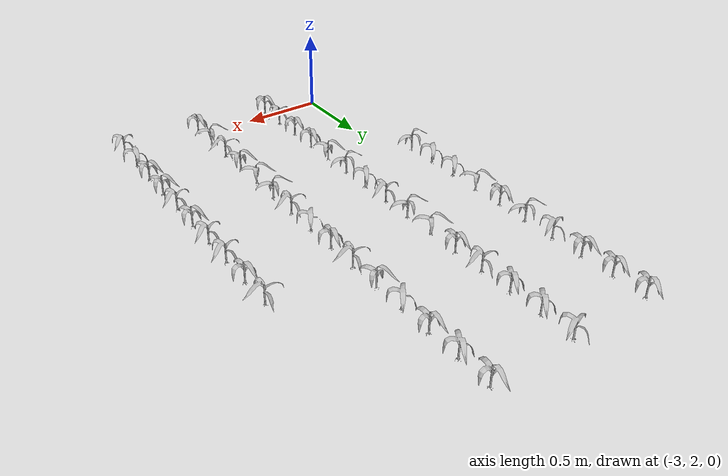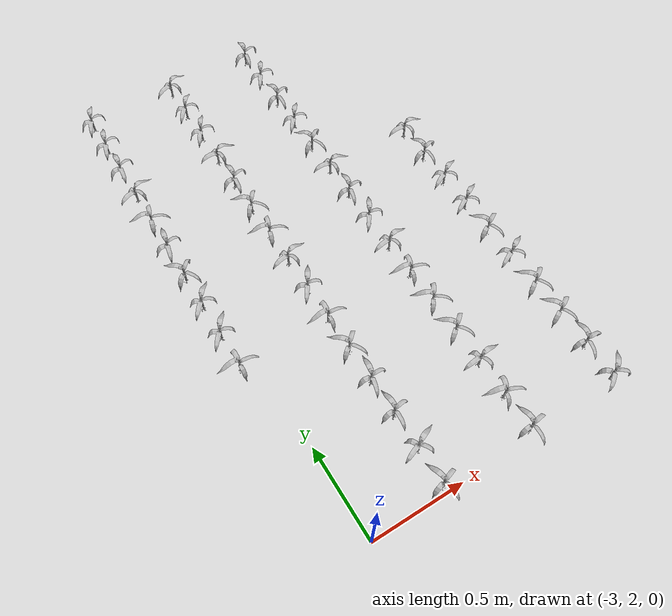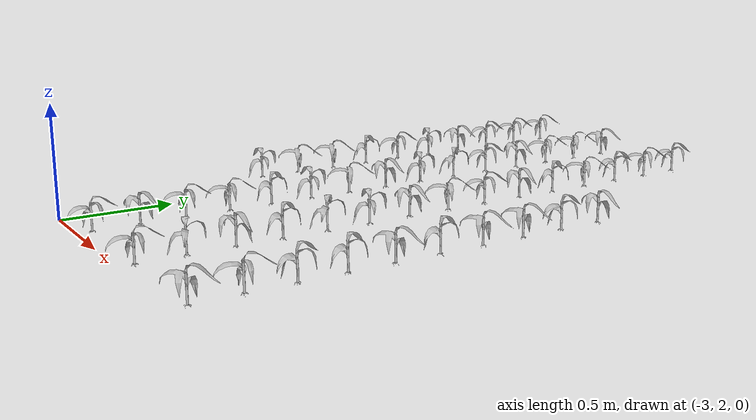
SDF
<sdf version="1.7">
 <world name="default">
  <model name="maize_-3.1033724693828124_3.000000000000001">
   <static>1</static>
   <link name="link">
    <inertial>
     <mass>0.2</mass>
     <inertia>
      <ixx>0.166667</ixx>
      <ixy>0</ixy>
      <ixz>0</ixz>
      <iyy>0.166667</iyy>
      <iyz>0</iyz>
      <izz>0.166667</izz>
     </inertia>
    </inertial>
    <collision name="collision">
     <geometry><mesh><uri>model://corn_3/meshes/corn.dae</uri><scale>0.25 0.25 0.25</scale></mesh></geometry>
     <surface>
      <friction><ode><mu>0</mu><mu2>0</mu2></ode></friction>
      <contact><ode><kp>0</kp><kd>0</kd><max_vel>0</max_vel><min_depth>0.002</min_depth></ode></contact>
     </surface>
    </collision>
    <visual name="visual">
     <geometry><mesh><uri>model://corn_3/meshes/corn.dae</uri><scale>0.25 0.25 0.25</scale></mesh></geometry>
    </visual>
    <velocity_decay><linear>0</linear><angular>0</angular></velocity_decay>
   </link>
   <pose>-3.10337 3 0.05 0 -0 3.10101</pose>
  </model>
  <model name="maize_-3.1033724693828124_3.1950000000000003">
   <static>1</static>
   <link name="link">
    <inertial>
     <mass>0.2</mass>
     <inertia>
      <ixx>0.166667</ixx>
      <ixy>0</ixy>
      <ixz>0</ixz>
      <iyy>0.166667</iyy>
      <iyz>0</iyz>
      <izz>0.166667</izz>
     </inertia>
    </inertial>
    <collision name="collision">
     <geometry><mesh><uri>model://corn_3/meshes/corn.dae</uri><scale>0.25 0.25 0.25</scale></mesh></geometry>
     <surface>
      <friction><ode><mu>0</mu><mu2>0</mu2></ode></friction>
      <contact><ode><kp>0</kp><kd>0</kd><max_vel>0</max_vel><min_depth>0.002</min_depth></ode></contact>
     </surface>
    </collision>
    <visual name="visual">
     <geometry><mesh><uri>model://corn_3/meshes/corn.dae</uri><scale>0.25 0.25 0.25</scale></mesh></geometry>
    </visual>
    <velocity_decay><linear>0</linear><angular>0</angular></velocity_decay>
   </link>
   <pose>-3.10337 3.195 0.05 0 -0 0.96652</pose>
  </model>
  <model name="maize_-3.1033724693828124_3.3899999999999997">
   <static>1</static>
   <link name="link">
    <inertial>
     <mass>0.2</mass>
     <inertia>
      <ixx>0.166667</ixx>
      <ixy>0</ixy>
      <ixz>0</ixz>
      <iyy>0.166667</iyy>
      <iyz>0</iyz>
      <izz>0.166667</izz>
     </inertia>
    </inertial>
    <collision name="collision">
     <geometry><mesh><uri>model://corn_3/meshes/corn.dae</uri><scale>0.25 0.25 0.25</scale></mesh></geometry>
     <surface>
      <friction><ode><mu>0</mu><mu2>0</mu2></ode></friction>
      <contact><ode><kp>0</kp><kd>0</kd><max_vel>0</max_vel><min_depth>0.002</min_depth></ode></contact>
     </surface>
    </collision>
    <visual name="visual">
     <geometry><mesh><uri>model://corn_3/meshes/corn.dae</uri><scale>0.25 0.25 0.25</scale></mesh></geometry>
    </visual>
    <velocity_decay><linear>0</linear><angular>0</angular></velocity_decay>
   </link>
   <pose>-3.10337 3.39 0.05 0 -0 0.922657</pose>
  </model>
  <model name="maize_-3.1033724693828124_3.585">
   <static>1</static>
   <link name="link">
    <inertial>
     <mass>0.2</mass>
     <inertia>
      <ixx>0.166667</ixx>
      <ixy>0</ixy>
      <ixz>0</ixz>
      <iyy>0.166667</iyy>
      <iyz>0</iyz>
      <izz>0.166667</izz>
     </inertia>
    </inertial>
    <collision name="collision">
     <geometry><mesh><uri>model://corn_3/meshes/corn.dae</uri><scale>0.25 0.25 0.25</scale></mesh></geometry>
     <surface>
      <friction><ode><mu>0</mu><mu2>0</mu2></ode></friction>
      <contact><ode><kp>0</kp><kd>0</kd><max_vel>0</max_vel><min_depth>0.002</min_depth></ode></contact>
     </surface>
    </collision>
    <visual name="visual">
     <geometry><mesh><uri>model://corn_3/meshes/corn.dae</uri><scale>0.25 0.25 0.25</scale></mesh></geometry>
    </visual>
    <velocity_decay><linear>0</linear><angular>0</angular></velocity_decay>
   </link>
   <pose>-3.10337 3.585 0.05 0 -0 2.23594</pose>
  </model>
  <model name="maize_-3.1033724693828124_3.7800000000000002">
   <static>1</static>
   <link name="link">
    <inertial>
     <mass>0.2</mass>
     <inertia>
      <ixx>0.166667</ixx>
      <ixy>0</ixy>
      <ixz>0</ixz>
      <iyy>0.166667</iyy>
      <iyz>0</iyz>
      <izz>0.166667</izz>
     </inertia>
    </inertial>
    <collision name="collision">
     <geometry><mesh><uri>model://corn_3/meshes/corn.dae</uri><scale>0.25 0.25 0.25</scale></mesh></geometry>
     <surface>
      <friction><ode><mu>0</mu><mu2>0</mu2></ode></friction>
      <contact><ode><kp>0</kp><kd>0</kd><max_vel>0</max_vel><min_depth>0.002</min_depth></ode></contact>
     </surface>
    </collision>
    <visual name="visual">
     <geometry><mesh><uri>model://corn_3/meshes/corn.dae</uri><scale>0.25 0.25 0.25</scale></mesh></geometry>
    </visual>
    <velocity_decay><linear>0</linear><angular>0</angular></velocity_decay>
   </link>
   <pose>-3.10337 3.78 0.05 0 -0 1.43829</pose>
  </model>
  <model name="maize_-3.1033724693828124_3.9750000000000005">
   <static>1</static>
   <link name="link">
    <inertial>
     <mass>0.2</mass>
     <inertia>
      <ixx>0.166667</ixx>
      <ixy>0</ixy>
      <ixz>0</ixz>
      <iyy>0.166667</iyy>
      <iyz>0</iyz>
      <izz>0.166667</izz>
     </inertia>
    </inertial>
    <collision name="collision">
     <geometry><mesh><uri>model://corn_3/meshes/corn.dae</uri><scale>0.25 0.25 0.25</scale></mesh></geometry>
     <surface>
      <friction><ode><mu>0</mu><mu2>0</mu2></ode></friction>
      <contact><ode><kp>0</kp><kd>0</kd><max_vel>0</max_vel><min_depth>0.002</min_depth></ode></contact>
     </surface>
    </collision>
    <visual name="visual">
     <geometry><mesh><uri>model://corn_3/meshes/corn.dae</uri><scale>0.25 0.25 0.25</scale></mesh></geometry>
    </visual>
    <velocity_decay><linear>0</linear><angular>0</angular></velocity_decay>
   </link>
   <pose>-3.10337 3.975 0.05 0 -0 2.82907</pose>
  </model>
  <model name="maize_-3.1033724693828124_4.170000000000001">
   <static>1</static>
   <link name="link">
    <inertial>
     <mass>0.2</mass>
     <inertia>
      <ixx>0.166667</ixx>
      <ixy>0</ixy>
      <ixz>0</ixz>
      <iyy>0.166667</iyy>
      <iyz>0</iyz>
      <izz>0.166667</izz>
     </inertia>
    </inertial>
    <collision name="collision">
     <geometry><mesh><uri>model://corn_3/meshes/corn.dae</uri><scale>0.25 0.25 0.25</scale></mesh></geometry>
     <surface>
      <friction><ode><mu>0</mu><mu2>0</mu2></ode></friction>
      <contact><ode><kp>0</kp><kd>0</kd><max_vel>0</max_vel><min_depth>0.002</min_depth></ode></contact>
     </surface>
    </collision>
    <visual name="visual">
     <geometry><mesh><uri>model://corn_3/meshes/corn.dae</uri><scale>0.25 0.25 0.25</scale></mesh></geometry>
    </visual>
    <velocity_decay><linear>0</linear><angular>0</angular></velocity_decay>
   </link>
   <pose>-3.10337 4.17 0.05 0 -0 0.369737</pose>
  </model>
  <model name="maize_-3.1033724693828124_4.365000000000001">
   <static>1</static>
   <link name="link">
    <inertial>
     <mass>0.2</mass>
     <inertia>
      <ixx>0.166667</ixx>
      <ixy>0</ixy>
      <ixz>0</ixz>
      <iyy>0.166667</iyy>
      <iyz>0</iyz>
      <izz>0.166667</izz>
     </inertia>
    </inertial>
    <collision name="collision">
     <geometry><mesh><uri>model://corn_3/meshes/corn.dae</uri><scale>0.25 0.25 0.25</scale></mesh></geometry>
     <surface>
      <friction><ode><mu>0</mu><mu2>0</mu2></ode></friction>
      <contact><ode><kp>0</kp><kd>0</kd><max_vel>0</max_vel><min_depth>0.002</min_depth></ode></contact>
     </surface>
    </collision>
    <visual name="visual">
     <geometry><mesh><uri>model://corn_3/meshes/corn.dae</uri><scale>0.25 0.25 0.25</scale></mesh></geometry>
    </visual>
    <velocity_decay><linear>0</linear><angular>0</angular></velocity_decay>
   </link>
   <pose>-3.10337 4.365 0.05 0 -0 1.53929</pose>
  </model>
  <model name="maize_-3.1033724693828124_4.56">
   <static>1</static>
   <link name="link">
    <inertial>
     <mass>0.2</mass>
     <inertia>
      <ixx>0.166667</ixx>
      <ixy>0</ixy>
      <ixz>0</ixz>
      <iyy>0.166667</iyy>
      <iyz>0</iyz>
      <izz>0.166667</izz>
     </inertia>
    </inertial>
    <collision name="collision">
     <geometry><mesh><uri>model://corn_3/meshes/corn.dae</uri><scale>0.25 0.25 0.25</scale></mesh></geometry>
     <surface>
      <friction><ode><mu>0</mu><mu2>0</mu2></ode></friction>
      <contact><ode><kp>0</kp><kd>0</kd><max_vel>0</max_vel><min_depth>0.002</min_depth></ode></contact>
     </surface>
    </collision>
    <visual name="visual">
     <geometry><mesh><uri>model://corn_3/meshes/corn.dae</uri><scale>0.25 0.25 0.25</scale></mesh></geometry>
    </visual>
    <velocity_decay><linear>0</linear><angular>0</angular></velocity_decay>
   </link>
   <pose>-3.10337 4.56 0.05 0 -0 1.33146</pose>
  </model>
  <model name="maize_-3.1033724693828124_4.755">
   <static>1</static>
   <link name="link">
    <inertial>
     <mass>0.2</mass>
     <inertia>
      <ixx>0.166667</ixx>
      <ixy>0</ixy>
      <ixz>0</ixz>
      <iyy>0.166667</iyy>
      <iyz>0</iyz>
      <izz>0.166667</izz>
     </inertia>
    </inertial>
    <collision name="collision">
     <geometry><mesh><uri>model://corn_3/meshes/corn.dae</uri><scale>0.25 0.25 0.25</scale></mesh></geometry>
     <surface>
      <friction><ode><mu>0</mu><mu2>0</mu2></ode></friction>
      <contact><ode><kp>0</kp><kd>0</kd><max_vel>0</max_vel><min_depth>0.002</min_depth></ode></contact>
     </surface>
    </collision>
    <visual name="visual">
     <geometry><mesh><uri>model://corn_3/meshes/corn.dae</uri><scale>0.25 0.25 0.25</scale></mesh></geometry>
    </visual>
    <velocity_decay><linear>0</linear><angular>0</angular></velocity_decay>
   </link>
   <pose>-3.10337 4.755 0.05 0 -0 1.23403</pose>
  </model>
  <model name="maize_-2.605993253374367_2.0250000000000004">
   <static>1</static>
   <link name="link">
    <inertial>
     <mass>0.2</mass>
     <inertia>
      <ixx>0.166667</ixx>
      <ixy>0</ixy>
      <ixz>0</ixz>
      <iyy>0.166667</iyy>
      <iyz>0</iyz>
      <izz>0.166667</izz>
     </inertia>
    </inertial>
    <collision name="collision">
     <geometry><mesh><uri>model://corn_3/meshes/corn.dae</uri><scale>0.25 0.25 0.25</scale></mesh></geometry>
     <surface>
      <friction><ode><mu>0</mu><mu2>0</mu2></ode></friction>
      <contact><ode><kp>0</kp><kd>0</kd><max_vel>0</max_vel><min_depth>0.002</min_depth></ode></contact>
     </surface>
    </collision>
    <visual name="visual">
     <geometry><mesh><uri>model://corn_3/meshes/corn.dae</uri><scale>0.25 0.25 0.25</scale></mesh></geometry>
    </visual>
    <velocity_decay><linear>0</linear><angular>0</angular></velocity_decay>
   </link>
   <pose>-2.60599 2.025 0.05 0 -0 1.80878</pose>
  </model>
  <model name="maize_-2.605993253374367_2.2200000000000006">
   <static>1</static>
   <link name="link">
    <inertial>
     <mass>0.2</mass>
     <inertia>
      <ixx>0.166667</ixx>
      <ixy>0</ixy>
      <ixz>0</ixz>
      <iyy>0.166667</iyy>
      <iyz>0</iyz>
      <izz>0.166667</izz>
     </inertia>
    </inertial>
    <collision name="collision">
     <geometry><mesh><uri>model://corn_3/meshes/corn.dae</uri><scale>0.25 0.25 0.25</scale></mesh></geometry>
     <surface>
      <friction><ode><mu>0</mu><mu2>0</mu2></ode></friction>
      <contact><ode><kp>0</kp><kd>0</kd><max_vel>0</max_vel><min_depth>0.002</min_depth></ode></contact>
     </surface>
    </collision>
    <visual name="visual">
     <geometry><mesh><uri>model://corn_3/meshes/corn.dae</uri><scale>0.25 0.25 0.25</scale></mesh></geometry>
    </visual>
    <velocity_decay><linear>0</linear><angular>0</angular></velocity_decay>
   </link>
   <pose>-2.60599 2.22 0.05 0 -0 0.457875</pose>
  </model>
  <model name="maize_-2.605993253374367_2.415">
   <static>1</static>
   <link name="link">
    <inertial>
     <mass>0.2</mass>
     <inertia>
      <ixx>0.166667</ixx>
      <ixy>0</ixy>
      <ixz>0</ixz>
      <iyy>0.166667</iyy>
      <iyz>0</iyz>
      <izz>0.166667</izz>
     </inertia>
    </inertial>
    <collision name="collision">
     <geometry><mesh><uri>model://corn_3/meshes/corn.dae</uri><scale>0.25 0.25 0.25</scale></mesh></geometry>
     <surface>
      <friction><ode><mu>0</mu><mu2>0</mu2></ode></friction>
      <contact><ode><kp>0</kp><kd>0</kd><max_vel>0</max_vel><min_depth>0.002</min_depth></ode></contact>
     </surface>
    </collision>
    <visual name="visual">
     <geometry><mesh><uri>model://corn_3/meshes/corn.dae</uri><scale>0.25 0.25 0.25</scale></mesh></geometry>
    </visual>
    <velocity_decay><linear>0</linear><angular>0</angular></velocity_decay>
   </link>
   <pose>-2.60599 2.415 0.05 0 -0 1.5924</pose>
  </model>
  <model name="maize_-2.605993253374367_2.6100000000000003">
   <static>1</static>
   <link name="link">
    <inertial>
     <mass>0.2</mass>
     <inertia>
      <ixx>0.166667</ixx>
      <ixy>0</ixy>
      <ixz>0</ixz>
      <iyy>0.166667</iyy>
      <iyz>0</iyz>
      <izz>0.166667</izz>
     </inertia>
    </inertial>
    <collision name="collision">
     <geometry><mesh><uri>model://corn_3/meshes/corn.dae</uri><scale>0.25 0.25 0.25</scale></mesh></geometry>
     <surface>
      <friction><ode><mu>0</mu><mu2>0</mu2></ode></friction>
      <contact><ode><kp>0</kp><kd>0</kd><max_vel>0</max_vel><min_depth>0.002</min_depth></ode></contact>
     </surface>
    </collision>
    <visual name="visual">
     <geometry><mesh><uri>model://corn_3/meshes/corn.dae</uri><scale>0.25 0.25 0.25</scale></mesh></geometry>
    </visual>
    <velocity_decay><linear>0</linear><angular>0</angular></velocity_decay>
   </link>
   <pose>-2.60599 2.61 0.05 0 -0 1.40563</pose>
  </model>
  <model name="maize_-2.605993253374367_2.8050000000000006">
   <static>1</static>
   <link name="link">
    <inertial>
     <mass>0.2</mass>
     <inertia>
      <ixx>0.166667</ixx>
      <ixy>0</ixy>
      <ixz>0</ixz>
      <iyy>0.166667</iyy>
      <iyz>0</iyz>
      <izz>0.166667</izz>
     </inertia>
    </inertial>
    <collision name="collision">
     <geometry><mesh><uri>model://corn_3/meshes/corn.dae</uri><scale>0.25 0.25 0.25</scale></mesh></geometry>
     <surface>
      <friction><ode><mu>0</mu><mu2>0</mu2></ode></friction>
      <contact><ode><kp>0</kp><kd>0</kd><max_vel>0</max_vel><min_depth>0.002</min_depth></ode></contact>
     </surface>
    </collision>
    <visual name="visual">
     <geometry><mesh><uri>model://corn_3/meshes/corn.dae</uri><scale>0.25 0.25 0.25</scale></mesh></geometry>
    </visual>
    <velocity_decay><linear>0</linear><angular>0</angular></velocity_decay>
   </link>
   <pose>-2.60599 2.805 0.05 0 -0 2.2335</pose>
  </model>
  <model name="maize_-2.605993253374367_3.000000000000001">
   <static>1</static>
   <link name="link">
    <inertial>
     <mass>0.2</mass>
     <inertia>
      <ixx>0.166667</ixx>
      <ixy>0</ixy>
      <ixz>0</ixz>
      <iyy>0.166667</iyy>
      <iyz>0</iyz>
      <izz>0.166667</izz>
     </inertia>
    </inertial>
    <collision name="collision">
     <geometry><mesh><uri>model://corn_3/meshes/corn.dae</uri><scale>0.25 0.25 0.25</scale></mesh></geometry>
     <surface>
      <friction><ode><mu>0</mu><mu2>0</mu2></ode></friction>
      <contact><ode><kp>0</kp><kd>0</kd><max_vel>0</max_vel><min_depth>0.002</min_depth></ode></contact>
     </surface>
    </collision>
    <visual name="visual">
     <geometry><mesh><uri>model://corn_3/meshes/corn.dae</uri><scale>0.25 0.25 0.25</scale></mesh></geometry>
    </visual>
    <velocity_decay><linear>0</linear><angular>0</angular></velocity_decay>
   </link>
   <pose>-2.60599 3 0.05 0 -0 3.0955</pose>
  </model>
  <model name="maize_-2.605993253374367_3.1950000000000003">
   <static>1</static>
   <link name="link">
    <inertial>
     <mass>0.2</mass>
     <inertia>
      <ixx>0.166667</ixx>
      <ixy>0</ixy>
      <ixz>0</ixz>
      <iyy>0.166667</iyy>
      <iyz>0</iyz>
      <izz>0.166667</izz>
     </inertia>
    </inertial>
    <collision name="collision">
     <geometry><mesh><uri>model://corn_3/meshes/corn.dae</uri><scale>0.25 0.25 0.25</scale></mesh></geometry>
     <surface>
      <friction><ode><mu>0</mu><mu2>0</mu2></ode></friction>
      <contact><ode><kp>0</kp><kd>0</kd><max_vel>0</max_vel><min_depth>0.002</min_depth></ode></contact>
     </surface>
    </collision>
    <visual name="visual">
     <geometry><mesh><uri>model://corn_3/meshes/corn.dae</uri><scale>0.25 0.25 0.25</scale></mesh></geometry>
    </visual>
    <velocity_decay><linear>0</linear><angular>0</angular></velocity_decay>
   </link>
   <pose>-2.60599 3.195 0.05 0 -0 1.06506</pose>
  </model>
  <model name="maize_-2.605993253374367_3.3899999999999997">
   <static>1</static>
   <link name="link">
    <inertial>
     <mass>0.2</mass>
     <inertia>
      <ixx>0.166667</ixx>
      <ixy>0</ixy>
      <ixz>0</ixz>
      <iyy>0.166667</iyy>
      <iyz>0</iyz>
      <izz>0.166667</izz>
     </inertia>
    </inertial>
    <collision name="collision">
     <geometry><mesh><uri>model://corn_3/meshes/corn.dae</uri><scale>0.25 0.25 0.25</scale></mesh></geometry>
     <surface>
      <friction><ode><mu>0</mu><mu2>0</mu2></ode></friction>
      <contact><ode><kp>0</kp><kd>0</kd><max_vel>0</max_vel><min_depth>0.002</min_depth></ode></contact>
     </surface>
    </collision>
    <visual name="visual">
     <geometry><mesh><uri>model://corn_3/meshes/corn.dae</uri><scale>0.25 0.25 0.25</scale></mesh></geometry>
    </visual>
    <velocity_decay><linear>0</linear><angular>0</angular></velocity_decay>
   </link>
   <pose>-2.60599 3.39 0.05 0 -0 0.270503</pose>
  </model>
  <model name="maize_-2.605993253374367_3.585">
   <static>1</static>
   <link name="link">
    <inertial>
     <mass>0.2</mass>
     <inertia>
      <ixx>0.166667</ixx>
      <ixy>0</ixy>
      <ixz>0</ixz>
      <iyy>0.166667</iyy>
      <iyz>0</iyz>
      <izz>0.166667</izz>
     </inertia>
    </inertial>
    <collision name="collision">
     <geometry><mesh><uri>model://corn_3/meshes/corn.dae</uri><scale>0.25 0.25 0.25</scale></mesh></geometry>
     <surface>
      <friction><ode><mu>0</mu><mu2>0</mu2></ode></friction>
      <contact><ode><kp>0</kp><kd>0</kd><max_vel>0</max_vel><min_depth>0.002</min_depth></ode></contact>
     </surface>
    </collision>
    <visual name="visual">
     <geometry><mesh><uri>model://corn_3/meshes/corn.dae</uri><scale>0.25 0.25 0.25</scale></mesh></geometry>
    </visual>
    <velocity_decay><linear>0</linear><angular>0</angular></velocity_decay>
   </link>
   <pose>-2.60599 3.585 0.05 0 -0 2.84462</pose>
  </model>
  <model name="maize_-2.605993253374367_3.7800000000000002">
   <static>1</static>
   <link name="link">
    <inertial>
     <mass>0.2</mass>
     <inertia>
      <ixx>0.166667</ixx>
      <ixy>0</ixy>
      <ixz>0</ixz>
      <iyy>0.166667</iyy>
      <iyz>0</iyz>
      <izz>0.166667</izz>
     </inertia>
    </inertial>
    <collision name="collision">
     <geometry><mesh><uri>model://corn_3/meshes/corn.dae</uri><scale>0.25 0.25 0.25</scale></mesh></geometry>
     <surface>
      <friction><ode><mu>0</mu><mu2>0</mu2></ode></friction>
      <contact><ode><kp>0</kp><kd>0</kd><max_vel>0</max_vel><min_depth>0.002</min_depth></ode></contact>
     </surface>
    </collision>
    <visual name="visual">
     <geometry><mesh><uri>model://corn_3/meshes/corn.dae</uri><scale>0.25 0.25 0.25</scale></mesh></geometry>
    </visual>
    <velocity_decay><linear>0</linear><angular>0</angular></velocity_decay>
   </link>
   <pose>-2.60599 3.78 0.05 0 -0 2.38789</pose>
  </model>
  <model name="maize_-2.605993253374367_3.9750000000000005">
   <static>1</static>
   <link name="link">
    <inertial>
     <mass>0.2</mass>
     <inertia>
      <ixx>0.166667</ixx>
      <ixy>0</ixy>
      <ixz>0</ixz>
      <iyy>0.166667</iyy>
      <iyz>0</iyz>
      <izz>0.166667</izz>
     </inertia>
    </inertial>
    <collision name="collision">
     <geometry><mesh><uri>model://corn_3/meshes/corn.dae</uri><scale>0.25 0.25 0.25</scale></mesh></geometry>
     <surface>
      <friction><ode><mu>0</mu><mu2>0</mu2></ode></friction>
      <contact><ode><kp>0</kp><kd>0</kd><max_vel>0</max_vel><min_depth>0.002</min_depth></ode></contact>
     </surface>
    </collision>
    <visual name="visual">
     <geometry><mesh><uri>model://corn_3/meshes/corn.dae</uri><scale>0.25 0.25 0.25</scale></mesh></geometry>
    </visual>
    <velocity_decay><linear>0</linear><angular>0</angular></velocity_decay>
   </link>
   <pose>-2.60599 3.975 0.05 0 -0 1.56585</pose>
  </model>
  <model name="maize_-2.605993253374367_4.170000000000001">
   <static>1</static>
   <link name="link">
    <inertial>
     <mass>0.2</mass>
     <inertia>
      <ixx>0.166667</ixx>
      <ixy>0</ixy>
      <ixz>0</ixz>
      <iyy>0.166667</iyy>
      <iyz>0</iyz>
      <izz>0.166667</izz>
     </inertia>
    </inertial>
    <collision name="collision">
     <geometry><mesh><uri>model://corn_3/meshes/corn.dae</uri><scale>0.25 0.25 0.25</scale></mesh></geometry>
     <surface>
      <friction><ode><mu>0</mu><mu2>0</mu2></ode></friction>
      <contact><ode><kp>0</kp><kd>0</kd><max_vel>0</max_vel><min_depth>0.002</min_depth></ode></contact>
     </surface>
    </collision>
    <visual name="visual">
     <geometry><mesh><uri>model://corn_3/meshes/corn.dae</uri><scale>0.25 0.25 0.25</scale></mesh></geometry>
    </visual>
    <velocity_decay><linear>0</linear><angular>0</angular></velocity_decay>
   </link>
   <pose>-2.60599 4.17 0.05 0 -0 0.08319</pose>
  </model>
  <model name="maize_-2.605993253374367_4.365000000000001">
   <static>1</static>
   <link name="link">
    <inertial>
     <mass>0.2</mass>
     <inertia>
      <ixx>0.166667</ixx>
      <ixy>0</ixy>
      <ixz>0</ixz>
      <iyy>0.166667</iyy>
      <iyz>0</iyz>
      <izz>0.166667</izz>
     </inertia>
    </inertial>
    <collision name="collision">
     <geometry><mesh><uri>model://corn_3/meshes/corn.dae</uri><scale>0.25 0.25 0.25</scale></mesh></geometry>
     <surface>
      <friction><ode><mu>0</mu><mu2>0</mu2></ode></friction>
      <contact><ode><kp>0</kp><kd>0</kd><max_vel>0</max_vel><min_depth>0.002</min_depth></ode></contact>
     </surface>
    </collision>
    <visual name="visual">
     <geometry><mesh><uri>model://corn_3/meshes/corn.dae</uri><scale>0.25 0.25 0.25</scale></mesh></geometry>
    </visual>
    <velocity_decay><linear>0</linear><angular>0</angular></velocity_decay>
   </link>
   <pose>-2.60599 4.365 0.05 0 -0 1.08898</pose>
  </model>
  <model name="maize_-2.605993253374367_4.56">
   <static>1</static>
   <link name="link">
    <inertial>
     <mass>0.2</mass>
     <inertia>
      <ixx>0.166667</ixx>
      <ixy>0</ixy>
      <ixz>0</ixz>
      <iyy>0.166667</iyy>
      <iyz>0</iyz>
      <izz>0.166667</izz>
     </inertia>
    </inertial>
    <collision name="collision">
     <geometry><mesh><uri>model://corn_3/meshes/corn.dae</uri><scale>0.25 0.25 0.25</scale></mesh></geometry>
     <surface>
      <friction><ode><mu>0</mu><mu2>0</mu2></ode></friction>
      <contact><ode><kp>0</kp><kd>0</kd><max_vel>0</max_vel><min_depth>0.002</min_depth></ode></contact>
     </surface>
    </collision>
    <visual name="visual">
     <geometry><mesh><uri>model://corn_3/meshes/corn.dae</uri><scale>0.25 0.25 0.25</scale></mesh></geometry>
    </visual>
    <velocity_decay><linear>0</linear><angular>0</angular></velocity_decay>
   </link>
   <pose>-2.60599 4.56 0.05 0 -0 0.942078</pose>
  </model>
  <model name="maize_-2.605993253374367_4.755">
   <static>1</static>
   <link name="link">
    <inertial>
     <mass>0.2</mass>
     <inertia>
      <ixx>0.166667</ixx>
      <ixy>0</ixy>
      <ixz>0</ixz>
      <iyy>0.166667</iyy>
      <iyz>0</iyz>
      <izz>0.166667</izz>
     </inertia>
    </inertial>
    <collision name="collision">
     <geometry><mesh><uri>model://corn_3/meshes/corn.dae</uri><scale>0.25 0.25 0.25</scale></mesh></geometry>
     <surface>
      <friction><ode><mu>0</mu><mu2>0</mu2></ode></friction>
      <contact><ode><kp>0</kp><kd>0</kd><max_vel>0</max_vel><min_depth>0.002</min_depth></ode></contact>
     </surface>
    </collision>
    <visual name="visual">
     <geometry><mesh><uri>model://corn_3/meshes/corn.dae</uri><scale>0.25 0.25 0.25</scale></mesh></geometry>
    </visual>
    <velocity_decay><linear>0</linear><angular>0</angular></velocity_decay>
   </link>
   <pose>-2.60599 4.755 0.05 0 -0 0.399834</pose>
  </model>
  <model name="maize_-2.1093609480429203_2.0250000000000004">
   <static>1</static>
   <link name="link">
    <inertial>
     <mass>0.2</mass>
     <inertia>
      <ixx>0.166667</ixx>
      <ixy>0</ixy>
      <ixz>0</ixz>
      <iyy>0.166667</iyy>
      <iyz>0</iyz>
      <izz>0.166667</izz>
     </inertia>
    </inertial>
    <collision name="collision">
     <geometry><mesh><uri>model://corn_3/meshes/corn.dae</uri><scale>0.25 0.25 0.25</scale></mesh></geometry>
     <surface>
      <friction><ode><mu>0</mu><mu2>0</mu2></ode></friction>
      <contact><ode><kp>0</kp><kd>0</kd><max_vel>0</max_vel><min_depth>0.002</min_depth></ode></contact>
     </surface>
    </collision>
    <visual name="visual">
     <geometry><mesh><uri>model://corn_3/meshes/corn.dae</uri><scale>0.25 0.25 0.25</scale></mesh></geometry>
    </visual>
    <velocity_decay><linear>0</linear><angular>0</angular></velocity_decay>
   </link>
   <pose>-2.10936 2.025 0.05 0 -0 1.62207</pose>
  </model>
  <model name="maize_-2.1093609480429203_2.2200000000000006">
   <static>1</static>
   <link name="link">
    <inertial>
     <mass>0.2</mass>
     <inertia>
      <ixx>0.166667</ixx>
      <ixy>0</ixy>
      <ixz>0</ixz>
      <iyy>0.166667</iyy>
      <iyz>0</iyz>
      <izz>0.166667</izz>
     </inertia>
    </inertial>
    <collision name="collision">
     <geometry><mesh><uri>model://corn_3/meshes/corn.dae</uri><scale>0.25 0.25 0.25</scale></mesh></geometry>
     <surface>
      <friction><ode><mu>0</mu><mu2>0</mu2></ode></friction>
      <contact><ode><kp>0</kp><kd>0</kd><max_vel>0</max_vel><min_depth>0.002</min_depth></ode></contact>
     </surface>
    </collision>
    <visual name="visual">
     <geometry><mesh><uri>model://corn_3/meshes/corn.dae</uri><scale>0.25 0.25 0.25</scale></mesh></geometry>
    </visual>
    <velocity_decay><linear>0</linear><angular>0</angular></velocity_decay>
   </link>
   <pose>-2.10936 2.22 0.05 0 -0 2.82573</pose>
  </model>
  <model name="maize_-2.1093609480429203_2.415">
   <static>1</static>
   <link name="link">
    <inertial>
     <mass>0.2</mass>
     <inertia>
      <ixx>0.166667</ixx>
      <ixy>0</ixy>
      <ixz>0</ixz>
      <iyy>0.166667</iyy>
      <iyz>0</iyz>
      <izz>0.166667</izz>
     </inertia>
    </inertial>
    <collision name="collision">
     <geometry><mesh><uri>model://corn_3/meshes/corn.dae</uri><scale>0.25 0.25 0.25</scale></mesh></geometry>
     <surface>
      <friction><ode><mu>0</mu><mu2>0</mu2></ode></friction>
      <contact><ode><kp>0</kp><kd>0</kd><max_vel>0</max_vel><min_depth>0.002</min_depth></ode></contact>
     </surface>
    </collision>
    <visual name="visual">
     <geometry><mesh><uri>model://corn_3/meshes/corn.dae</uri><scale>0.25 0.25 0.25</scale></mesh></geometry>
    </visual>
    <velocity_decay><linear>0</linear><angular>0</angular></velocity_decay>
   </link>
   <pose>-2.10936 2.415 0.05 0 -0 0.14987</pose>
  </model>
  <model name="maize_-2.1093609480429203_2.6100000000000003">
   <static>1</static>
   <link name="link">
    <inertial>
     <mass>0.2</mass>
     <inertia>
      <ixx>0.166667</ixx>
      <ixy>0</ixy>
      <ixz>0</ixz>
      <iyy>0.166667</iyy>
      <iyz>0</iyz>
      <izz>0.166667</izz>
     </inertia>
    </inertial>
    <collision name="collision">
     <geometry><mesh><uri>model://corn_3/meshes/corn.dae</uri><scale>0.25 0.25 0.25</scale></mesh></geometry>
     <surface>
      <friction><ode><mu>0</mu><mu2>0</mu2></ode></friction>
      <contact><ode><kp>0</kp><kd>0</kd><max_vel>0</max_vel><min_depth>0.002</min_depth></ode></contact>
     </surface>
    </collision>
    <visual name="visual">
     <geometry><mesh><uri>model://corn_3/meshes/corn.dae</uri><scale>0.25 0.25 0.25</scale></mesh></geometry>
    </visual>
    <velocity_decay><linear>0</linear><angular>0</angular></velocity_decay>
   </link>
   <pose>-2.10936 2.61 0.05 0 -0 2.23267</pose>
  </model>
  <model name="maize_-2.1093609480429203_2.8050000000000006">
   <static>1</static>
   <link name="link">
    <inertial>
     <mass>0.2</mass>
     <inertia>
      <ixx>0.166667</ixx>
      <ixy>0</ixy>
      <ixz>0</ixz>
      <iyy>0.166667</iyy>
      <iyz>0</iyz>
      <izz>0.166667</izz>
     </inertia>
    </inertial>
    <collision name="collision">
     <geometry><mesh><uri>model://corn_3/meshes/corn.dae</uri><scale>0.25 0.25 0.25</scale></mesh></geometry>
     <surface>
      <friction><ode><mu>0</mu><mu2>0</mu2></ode></friction>
      <contact><ode><kp>0</kp><kd>0</kd><max_vel>0</max_vel><min_depth>0.002</min_depth></ode></contact>
     </surface>
    </collision>
    <visual name="visual">
     <geometry><mesh><uri>model://corn_3/meshes/corn.dae</uri><scale>0.25 0.25 0.25</scale></mesh></geometry>
    </visual>
    <velocity_decay><linear>0</linear><angular>0</angular></velocity_decay>
   </link>
   <pose>-2.10936 2.805 0.05 0 -0 2.53929</pose>
  </model>
  <model name="maize_-2.1093609480429203_3.000000000000001">
   <static>1</static>
   <link name="link">
    <inertial>
     <mass>0.2</mass>
     <inertia>
      <ixx>0.166667</ixx>
      <ixy>0</ixy>
      <ixz>0</ixz>
      <iyy>0.166667</iyy>
      <iyz>0</iyz>
      <izz>0.166667</izz>
     </inertia>
    </inertial>
    <collision name="collision">
     <geometry><mesh><uri>model://corn_3/meshes/corn.dae</uri><scale>0.25 0.25 0.25</scale></mesh></geometry>
     <surface>
      <friction><ode><mu>0</mu><mu2>0</mu2></ode></friction>
      <contact><ode><kp>0</kp><kd>0</kd><max_vel>0</max_vel><min_depth>0.002</min_depth></ode></contact>
     </surface>
    </collision>
    <visual name="visual">
     <geometry><mesh><uri>model://corn_3/meshes/corn.dae</uri><scale>0.25 0.25 0.25</scale></mesh></geometry>
    </visual>
    <velocity_decay><linear>0</linear><angular>0</angular></velocity_decay>
   </link>
   <pose>-2.10936 3 0.05 0 -0 2.90551</pose>
  </model>
  <model name="maize_-2.1093609480429203_3.1950000000000003">
   <static>1</static>
   <link name="link">
    <inertial>
     <mass>0.2</mass>
     <inertia>
      <ixx>0.166667</ixx>
      <ixy>0</ixy>
      <ixz>0</ixz>
      <iyy>0.166667</iyy>
      <iyz>0</iyz>
      <izz>0.166667</izz>
     </inertia>
    </inertial>
    <collision name="collision">
     <geometry><mesh><uri>model://corn_3/meshes/corn.dae</uri><scale>0.25 0.25 0.25</scale></mesh></geometry>
     <surface>
      <friction><ode><mu>0</mu><mu2>0</mu2></ode></friction>
      <contact><ode><kp>0</kp><kd>0</kd><max_vel>0</max_vel><min_depth>0.002</min_depth></ode></contact>
     </surface>
    </collision>
    <visual name="visual">
     <geometry><mesh><uri>model://corn_3/meshes/corn.dae</uri><scale>0.25 0.25 0.25</scale></mesh></geometry>
    </visual>
    <velocity_decay><linear>0</linear><angular>0</angular></velocity_decay>
   </link>
   <pose>-2.10936 3.195 0.05 0 -0 0.21622</pose>
  </model>
  <model name="maize_-2.1093609480429203_3.3899999999999997">
   <static>1</static>
   <link name="link">
    <inertial>
     <mass>0.2</mass>
     <inertia>
      <ixx>0.166667</ixx>
      <ixy>0</ixy>
      <ixz>0</ixz>
      <iyy>0.166667</iyy>
      <iyz>0</iyz>
      <izz>0.166667</izz>
     </inertia>
    </inertial>
    <collision name="collision">
     <geometry><mesh><uri>model://corn_3/meshes/corn.dae</uri><scale>0.25 0.25 0.25</scale></mesh></geometry>
     <surface>
      <friction><ode><mu>0</mu><mu2>0</mu2></ode></friction>
      <contact><ode><kp>0</kp><kd>0</kd><max_vel>0</max_vel><min_depth>0.002</min_depth></ode></contact>
     </surface>
    </collision>
    <visual name="visual">
     <geometry><mesh><uri>model://corn_3/meshes/corn.dae</uri><scale>0.25 0.25 0.25</scale></mesh></geometry>
    </visual>
    <velocity_decay><linear>0</linear><angular>0</angular></velocity_decay>
   </link>
   <pose>-2.10936 3.39 0.05 0 -0 1.05908</pose>
  </model>
  <model name="maize_-2.1093609480429203_3.585">
   <static>1</static>
   <link name="link">
    <inertial>
     <mass>0.2</mass>
     <inertia>
      <ixx>0.166667</ixx>
      <ixy>0</ixy>
      <ixz>0</ixz>
      <iyy>0.166667</iyy>
      <iyz>0</iyz>
      <izz>0.166667</izz>
     </inertia>
    </inertial>
    <collision name="collision">
     <geometry><mesh><uri>model://corn_3/meshes/corn.dae</uri><scale>0.25 0.25 0.25</scale></mesh></geometry>
     <surface>
      <friction><ode><mu>0</mu><mu2>0</mu2></ode></friction>
      <contact><ode><kp>0</kp><kd>0</kd><max_vel>0</max_vel><min_depth>0.002</min_depth></ode></contact>
     </surface>
    </collision>
    <visual name="visual">
     <geometry><mesh><uri>model://corn_3/meshes/corn.dae</uri><scale>0.25 0.25 0.25</scale></mesh></geometry>
    </visual>
    <velocity_decay><linear>0</linear><angular>0</angular></velocity_decay>
   </link>
   <pose>-2.10936 3.585 0.05 0 -0 1.43187</pose>
  </model>
  <model name="maize_-2.1093609480429203_3.7800000000000002">
   <static>1</static>
   <link name="link">
    <inertial>
     <mass>0.2</mass>
     <inertia>
      <ixx>0.166667</ixx>
      <ixy>0</ixy>
      <ixz>0</ixz>
      <iyy>0.166667</iyy>
      <iyz>0</iyz>
      <izz>0.166667</izz>
     </inertia>
    </inertial>
    <collision name="collision">
     <geometry><mesh><uri>model://corn_3/meshes/corn.dae</uri><scale>0.25 0.25 0.25</scale></mesh></geometry>
     <surface>
      <friction><ode><mu>0</mu><mu2>0</mu2></ode></friction>
      <contact><ode><kp>0</kp><kd>0</kd><max_vel>0</max_vel><min_depth>0.002</min_depth></ode></contact>
     </surface>
    </collision>
    <visual name="visual">
     <geometry><mesh><uri>model://corn_3/meshes/corn.dae</uri><scale>0.25 0.25 0.25</scale></mesh></geometry>
    </visual>
    <velocity_decay><linear>0</linear><angular>0</angular></velocity_decay>
   </link>
   <pose>-2.10936 3.78 0.05 0 -0 0.006993</pose>
  </model>
  <model name="maize_-2.1093609480429203_3.9750000000000005">
   <static>1</static>
   <link name="link">
    <inertial>
     <mass>0.2</mass>
     <inertia>
      <ixx>0.166667</ixx>
      <ixy>0</ixy>
      <ixz>0</ixz>
      <iyy>0.166667</iyy>
      <iyz>0</iyz>
      <izz>0.166667</izz>
     </inertia>
    </inertial>
    <collision name="collision">
     <geometry><mesh><uri>model://corn_3/meshes/corn.dae</uri><scale>0.25 0.25 0.25</scale></mesh></geometry>
     <surface>
      <friction><ode><mu>0</mu><mu2>0</mu2></ode></friction>
      <contact><ode><kp>0</kp><kd>0</kd><max_vel>0</max_vel><min_depth>0.002</min_depth></ode></contact>
     </surface>
    </collision>
    <visual name="visual">
     <geometry><mesh><uri>model://corn_3/meshes/corn.dae</uri><scale>0.25 0.25 0.25</scale></mesh></geometry>
    </visual>
    <velocity_decay><linear>0</linear><angular>0</angular></velocity_decay>
   </link>
   <pose>-2.10936 3.975 0.05 0 -0 2.0623</pose>
  </model>
  <model name="maize_-2.1093609480429203_4.170000000000001">
   <static>1</static>
   <link name="link">
    <inertial>
     <mass>0.2</mass>
     <inertia>
      <ixx>0.166667</ixx>
      <ixy>0</ixy>
      <ixz>0</ixz>
      <iyy>0.166667</iyy>
      <iyz>0</iyz>
      <izz>0.166667</izz>
     </inertia>
    </inertial>
    <collision name="collision">
     <geometry><mesh><uri>model://corn_3/meshes/corn.dae</uri><scale>0.25 0.25 0.25</scale></mesh></geometry>
     <surface>
      <friction><ode><mu>0</mu><mu2>0</mu2></ode></friction>
      <contact><ode><kp>0</kp><kd>0</kd><max_vel>0</max_vel><min_depth>0.002</min_depth></ode></contact>
     </surface>
    </collision>
    <visual name="visual">
     <geometry><mesh><uri>model://corn_3/meshes/corn.dae</uri><scale>0.25 0.25 0.25</scale></mesh></geometry>
    </visual>
    <velocity_decay><linear>0</linear><angular>0</angular></velocity_decay>
   </link>
   <pose>-2.10936 4.17 0.05 0 -0 0.965159</pose>
  </model>
  <model name="maize_-2.1093609480429203_4.365000000000001">
   <static>1</static>
   <link name="link">
    <inertial>
     <mass>0.2</mass>
     <inertia>
      <ixx>0.166667</ixx>
      <ixy>0</ixy>
      <ixz>0</ixz>
      <iyy>0.166667</iyy>
      <iyz>0</iyz>
      <izz>0.166667</izz>
     </inertia>
    </inertial>
    <collision name="collision">
     <geometry><mesh><uri>model://corn_3/meshes/corn.dae</uri><scale>0.25 0.25 0.25</scale></mesh></geometry>
     <surface>
      <friction><ode><mu>0</mu><mu2>0</mu2></ode></friction>
      <contact><ode><kp>0</kp><kd>0</kd><max_vel>0</max_vel><min_depth>0.002</min_depth></ode></contact>
     </surface>
    </collision>
    <visual name="visual">
     <geometry><mesh><uri>model://corn_3/meshes/corn.dae</uri><scale>0.25 0.25 0.25</scale></mesh></geometry>
    </visual>
    <velocity_decay><linear>0</linear><angular>0</angular></velocity_decay>
   </link>
   <pose>-2.10936 4.365 0.05 0 -0 1.66102</pose>
  </model>
  <model name="maize_-2.1093609480429203_4.56">
   <static>1</static>
   <link name="link">
    <inertial>
     <mass>0.2</mass>
     <inertia>
      <ixx>0.166667</ixx>
      <ixy>0</ixy>
      <ixz>0</ixz>
      <iyy>0.166667</iyy>
      <iyz>0</iyz>
      <izz>0.166667</izz>
     </inertia>
    </inertial>
    <collision name="collision">
     <geometry><mesh><uri>model://corn_3/meshes/corn.dae</uri><scale>0.25 0.25 0.25</scale></mesh></geometry>
     <surface>
      <friction><ode><mu>0</mu><mu2>0</mu2></ode></friction>
      <contact><ode><kp>0</kp><kd>0</kd><max_vel>0</max_vel><min_depth>0.002</min_depth></ode></contact>
     </surface>
    </collision>
    <visual name="visual">
     <geometry><mesh><uri>model://corn_3/meshes/corn.dae</uri><scale>0.25 0.25 0.25</scale></mesh></geometry>
    </visual>
    <velocity_decay><linear>0</linear><angular>0</angular></velocity_decay>
   </link>
   <pose>-2.10936 4.56 0.05 0 -0 1.11086</pose>
  </model>
  <model name="maize_-2.1093609480429203_4.755">
   <static>1</static>
   <link name="link">
    <inertial>
     <mass>0.2</mass>
     <inertia>
      <ixx>0.166667</ixx>
      <ixy>0</ixy>
      <ixz>0</ixz>
      <iyy>0.166667</iyy>
      <iyz>0</iyz>
      <izz>0.166667</izz>
     </inertia>
    </inertial>
    <collision name="collision">
     <geometry><mesh><uri>model://corn_3/meshes/corn.dae</uri><scale>0.25 0.25 0.25</scale></mesh></geometry>
     <surface>
      <friction><ode><mu>0</mu><mu2>0</mu2></ode></friction>
      <contact><ode><kp>0</kp><kd>0</kd><max_vel>0</max_vel><min_depth>0.002</min_depth></ode></contact>
     </surface>
    </collision>
    <visual name="visual">
     <geometry><mesh><uri>model://corn_3/meshes/corn.dae</uri><scale>0.25 0.25 0.25</scale></mesh></geometry>
    </visual>
    <velocity_decay><linear>0</linear><angular>0</angular></velocity_decay>
   </link>
   <pose>-2.10936 4.755 0.05 0 -0 1.49251</pose>
  </model>
  <model name="maize_-1.6134747127982658_2.0250000000000004">
   <static>1</static>
   <link name="link">
    <inertial>
     <mass>0.2</mass>
     <inertia>
      <ixx>0.166667</ixx>
      <ixy>0</ixy>
      <ixz>0</ixz>
      <iyy>0.166667</iyy>
      <iyz>0</iyz>
      <izz>0.166667</izz>
     </inertia>
    </inertial>
    <collision name="collision">
     <geometry><mesh><uri>model://corn_3/meshes/corn.dae</uri><scale>0.25 0.25 0.25</scale></mesh></geometry>
     <surface>
      <friction><ode><mu>0</mu><mu2>0</mu2></ode></friction>
      <contact><ode><kp>0</kp><kd>0</kd><max_vel>0</max_vel><min_depth>0.002</min_depth></ode></contact>
     </surface>
    </collision>
    <visual name="visual">
     <geometry><mesh><uri>model://corn_3/meshes/corn.dae</uri><scale>0.25 0.25 0.25</scale></mesh></geometry>
    </visual>
    <velocity_decay><linear>0</linear><angular>0</angular></velocity_decay>
   </link>
   <pose>-1.61347 2.025 0.05 0 -0 0.759694</pose>
  </model>
  <model name="maize_-1.6134747127982658_2.2200000000000006">
   <static>1</static>
   <link name="link">
    <inertial>
     <mass>0.2</mass>
     <inertia>
      <ixx>0.166667</ixx>
      <ixy>0</ixy>
      <ixz>0</ixz>
      <iyy>0.166667</iyy>
      <iyz>0</iyz>
      <izz>0.166667</izz>
     </inertia>
    </inertial>
    <collision name="collision">
     <geometry><mesh><uri>model://corn_3/meshes/corn.dae</uri><scale>0.25 0.25 0.25</scale></mesh></geometry>
     <surface>
      <friction><ode><mu>0</mu><mu2>0</mu2></ode></friction>
      <contact><ode><kp>0</kp><kd>0</kd><max_vel>0</max_vel><min_depth>0.002</min_depth></ode></contact>
     </surface>
    </collision>
    <visual name="visual">
     <geometry><mesh><uri>model://corn_3/meshes/corn.dae</uri><scale>0.25 0.25 0.25</scale></mesh></geometry>
    </visual>
    <velocity_decay><linear>0</linear><angular>0</angular></velocity_decay>
   </link>
   <pose>-1.61347 2.22 0.05 0 -0 1.41842</pose>
  </model>
  <model name="maize_-1.6134747127982658_2.415">
   <static>1</static>
   <link name="link">
    <inertial>
     <mass>0.2</mass>
     <inertia>
      <ixx>0.166667</ixx>
      <ixy>0</ixy>
      <ixz>0</ixz>
      <iyy>0.166667</iyy>
      <iyz>0</iyz>
      <izz>0.166667</izz>
     </inertia>
    </inertial>
    <collision name="collision">
     <geometry><mesh><uri>model://corn_3/meshes/corn.dae</uri><scale>0.25 0.25 0.25</scale></mesh></geometry>
     <surface>
      <friction><ode><mu>0</mu><mu2>0</mu2></ode></friction>
      <contact><ode><kp>0</kp><kd>0</kd><max_vel>0</max_vel><min_depth>0.002</min_depth></ode></contact>
     </surface>
    </collision>
    <visual name="visual">
     <geometry><mesh><uri>model://corn_3/meshes/corn.dae</uri><scale>0.25 0.25 0.25</scale></mesh></geometry>
    </visual>
    <velocity_decay><linear>0</linear><angular>0</angular></velocity_decay>
   </link>
   <pose>-1.61347 2.415 0.05 0 -0 2.04244</pose>
  </model>
  <model name="maize_-1.6134747127982658_2.6100000000000003">
   <static>1</static>
   <link name="link">
    <inertial>
     <mass>0.2</mass>
     <inertia>
      <ixx>0.166667</ixx>
      <ixy>0</ixy>
      <ixz>0</ixz>
      <iyy>0.166667</iyy>
      <iyz>0</iyz>
      <izz>0.166667</izz>
     </inertia>
    </inertial>
    <collision name="collision">
     <geometry><mesh><uri>model://corn_3/meshes/corn.dae</uri><scale>0.25 0.25 0.25</scale></mesh></geometry>
     <surface>
      <friction><ode><mu>0</mu><mu2>0</mu2></ode></friction>
      <contact><ode><kp>0</kp><kd>0</kd><max_vel>0</max_vel><min_depth>0.002</min_depth></ode></contact>
     </surface>
    </collision>
    <visual name="visual">
     <geometry><mesh><uri>model://corn_3/meshes/corn.dae</uri><scale>0.25 0.25 0.25</scale></mesh></geometry>
    </visual>
    <velocity_decay><linear>0</linear><angular>0</angular></velocity_decay>
   </link>
   <pose>-1.61347 2.61 0.05 0 -0 2.14582</pose>
  </model>
  <model name="maize_-1.6134747127982658_2.8050000000000006">
   <static>1</static>
   <link name="link">
    <inertial>
     <mass>0.2</mass>
     <inertia>
      <ixx>0.166667</ixx>
      <ixy>0</ixy>
      <ixz>0</ixz>
      <iyy>0.166667</iyy>
      <iyz>0</iyz>
      <izz>0.166667</izz>
     </inertia>
    </inertial>
    <collision name="collision">
     <geometry><mesh><uri>model://corn_3/meshes/corn.dae</uri><scale>0.25 0.25 0.25</scale></mesh></geometry>
     <surface>
      <friction><ode><mu>0</mu><mu2>0</mu2></ode></friction>
      <contact><ode><kp>0</kp><kd>0</kd><max_vel>0</max_vel><min_depth>0.002</min_depth></ode></contact>
     </surface>
    </collision>
    <visual name="visual">
     <geometry><mesh><uri>model://corn_3/meshes/corn.dae</uri><scale>0.25 0.25 0.25</scale></mesh></geometry>
    </visual>
    <velocity_decay><linear>0</linear><angular>0</angular></velocity_decay>
   </link>
   <pose>-1.61347 2.805 0.05 0 -0 0.529481</pose>
  </model>
  <model name="maize_-1.6134747127982658_3.000000000000001">
   <static>1</static>
   <link name="link">
    <inertial>
     <mass>0.2</mass>
     <inertia>
      <ixx>0.166667</ixx>
      <ixy>0</ixy>
      <ixz>0</ixz>
      <iyy>0.166667</iyy>
      <iyz>0</iyz>
      <izz>0.166667</izz>
     </inertia>
    </inertial>
    <collision name="collision">
     <geometry><mesh><uri>model://corn_3/meshes/corn.dae</uri><scale>0.25 0.25 0.25</scale></mesh></geometry>
     <surface>
      <friction><ode><mu>0</mu><mu2>0</mu2></ode></friction>
      <contact><ode><kp>0</kp><kd>0</kd><max_vel>0</max_vel><min_depth>0.002</min_depth></ode></contact>
     </surface>
    </collision>
    <visual name="visual">
     <geometry><mesh><uri>model://corn_3/meshes/corn.dae</uri><scale>0.25 0.25 0.25</scale></mesh></geometry>
    </visual>
    <velocity_decay><linear>0</linear><angular>0</angular></velocity_decay>
   </link>
   <pose>-1.61347 3 0.05 0 -0 2.01488</pose>
  </model>
  <model name="maize_-1.6134747127982658_3.1950000000000003">
   <static>1</static>
   <link name="link">
    <inertial>
     <mass>0.2</mass>
     <inertia>
      <ixx>0.166667</ixx>
      <ixy>0</ixy>
      <ixz>0</ixz>
      <iyy>0.166667</iyy>
      <iyz>0</iyz>
      <izz>0.166667</izz>
     </inertia>
    </inertial>
    <collision name="collision">
     <geometry><mesh><uri>model://corn_3/meshes/corn.dae</uri><scale>0.25 0.25 0.25</scale></mesh></geometry>
     <surface>
      <friction><ode><mu>0</mu><mu2>0</mu2></ode></friction>
      <contact><ode><kp>0</kp><kd>0</kd><max_vel>0</max_vel><min_depth>0.002</min_depth></ode></contact>
     </surface>
    </collision>
    <visual name="visual">
     <geometry><mesh><uri>model://corn_3/meshes/corn.dae</uri><scale>0.25 0.25 0.25</scale></mesh></geometry>
    </visual>
    <velocity_decay><linear>0</linear><angular>0</angular></velocity_decay>
   </link>
   <pose>-1.61347 3.195 0.05 0 -0 0.571207</pose>
  </model>
  <model name="maize_-1.6134747127982658_3.3899999999999997">
   <static>1</static>
   <link name="link">
    <inertial>
     <mass>0.2</mass>
     <inertia>
      <ixx>0.166667</ixx>
      <ixy>0</ixy>
      <ixz>0</ixz>
      <iyy>0.166667</iyy>
      <iyz>0</iyz>
      <izz>0.166667</izz>
     </inertia>
    </inertial>
    <collision name="collision">
     <geometry><mesh><uri>model://corn_3/meshes/corn.dae</uri><scale>0.25 0.25 0.25</scale></mesh></geometry>
     <surface>
      <friction><ode><mu>0</mu><mu2>0</mu2></ode></friction>
      <contact><ode><kp>0</kp><kd>0</kd><max_vel>0</max_vel><min_depth>0.002</min_depth></ode></contact>
     </surface>
    </collision>
    <visual name="visual">
     <geometry><mesh><uri>model://corn_3/meshes/corn.dae</uri><scale>0.25 0.25 0.25</scale></mesh></geometry>
    </visual>
    <velocity_decay><linear>0</linear><angular>0</angular></velocity_decay>
   </link>
   <pose>-1.61347 3.39 0.05 0 -0 0.519615</pose>
  </model>
  <model name="maize_-1.6134747127982658_3.585">
   <static>1</static>
   <link name="link">
    <inertial>
     <mass>0.2</mass>
     <inertia>
      <ixx>0.166667</ixx>
      <ixy>0</ixy>
      <ixz>0</ixz>
      <iyy>0.166667</iyy>
      <iyz>0</iyz>
      <izz>0.166667</izz>
     </inertia>
    </inertial>
    <collision name="collision">
     <geometry><mesh><uri>model://corn_3/meshes/corn.dae</uri><scale>0.25 0.25 0.25</scale></mesh></geometry>
     <surface>
      <friction><ode><mu>0</mu><mu2>0</mu2></ode></friction>
      <contact><ode><kp>0</kp><kd>0</kd><max_vel>0</max_vel><min_depth>0.002</min_depth></ode></contact>
     </surface>
    </collision>
    <visual name="visual">
     <geometry><mesh><uri>model://corn_3/meshes/corn.dae</uri><scale>0.25 0.25 0.25</scale></mesh></geometry>
    </visual>
    <velocity_decay><linear>0</linear><angular>0</angular></velocity_decay>
   </link>
   <pose>-1.61347 3.585 0.05 0 -0 1.72316</pose>
  </model>
  <model name="maize_-1.6134747127982658_3.7800000000000002">
   <static>1</static>
   <link name="link">
    <inertial>
     <mass>0.2</mass>
     <inertia>
      <ixx>0.166667</ixx>
      <ixy>0</ixy>
      <ixz>0</ixz>
      <iyy>0.166667</iyy>
      <iyz>0</iyz>
      <izz>0.166667</izz>
     </inertia>
    </inertial>
    <collision name="collision">
     <geometry><mesh><uri>model://corn_3/meshes/corn.dae</uri><scale>0.25 0.25 0.25</scale></mesh></geometry>
     <surface>
      <friction><ode><mu>0</mu><mu2>0</mu2></ode></friction>
      <contact><ode><kp>0</kp><kd>0</kd><max_vel>0</max_vel><min_depth>0.002</min_depth></ode></contact>
     </surface>
    </collision>
    <visual name="visual">
     <geometry><mesh><uri>model://corn_3/meshes/corn.dae</uri><scale>0.25 0.25 0.25</scale></mesh></geometry>
    </visual>
    <velocity_decay><linear>0</linear><angular>0</angular></velocity_decay>
   </link>
   <pose>-1.61347 3.78 0.05 0 -0 0.07319</pose>
  </model>
 </world>
</sdf>
